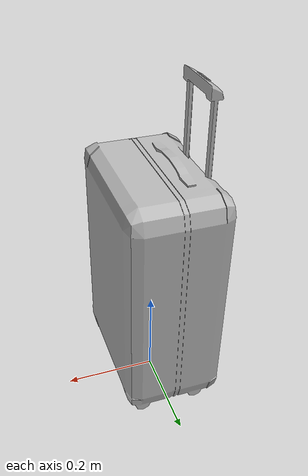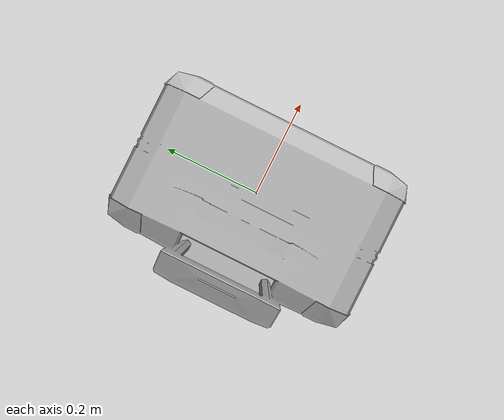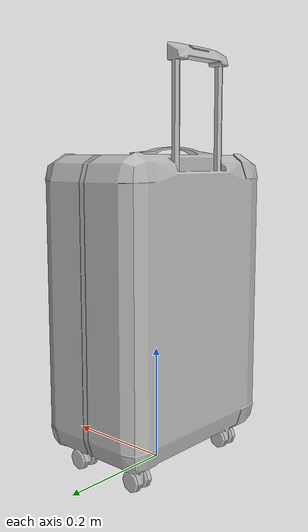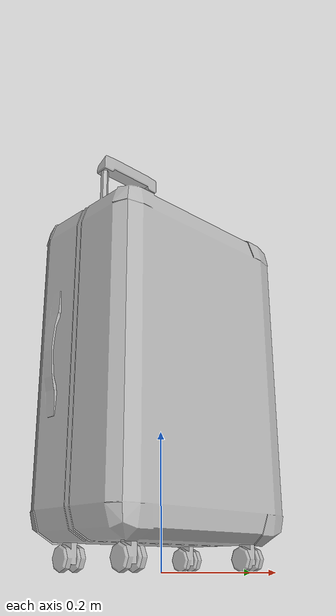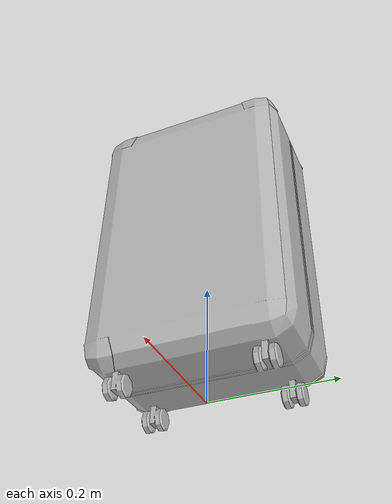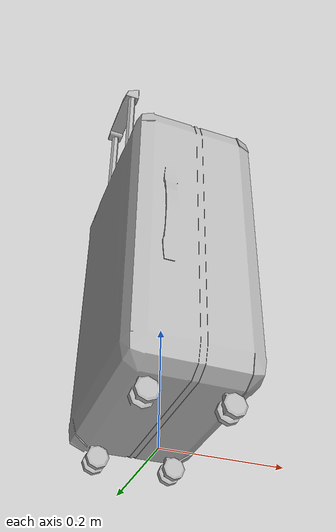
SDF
<?xml version='1.0' encoding='utf-8'?>
<sdf version="1.6">
  <model name="Suitcase2H">
   <static>true</static>
    <link name="body">
      <pose>0 0 0 0 0 0</pose>

      <visual name="visual">
        <geometry>
          <mesh>
            <uri>model://Suitcase2H/meshes/Suitcase2H.obj</uri>
          </mesh>
        </geometry>
      </visual>

      <collision name="collision">
        <geometry>
          <mesh>
            <uri>model://Suitcase2H/meshes/Suitcase2H_Col.obj</uri>
          </mesh>
        </geometry>
      </collision>

    </link>
  </model>
</sdf>
